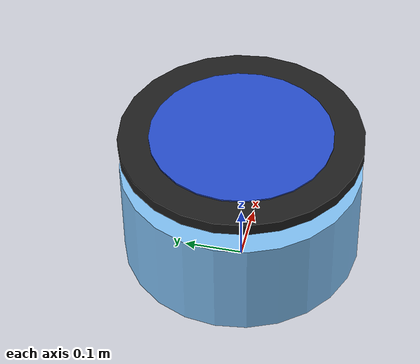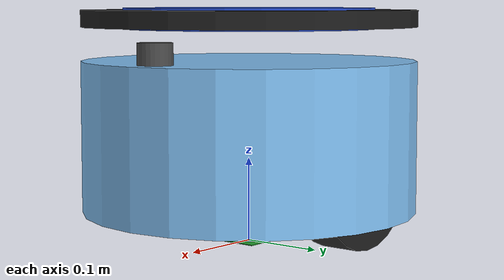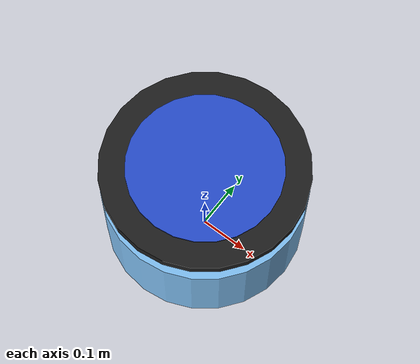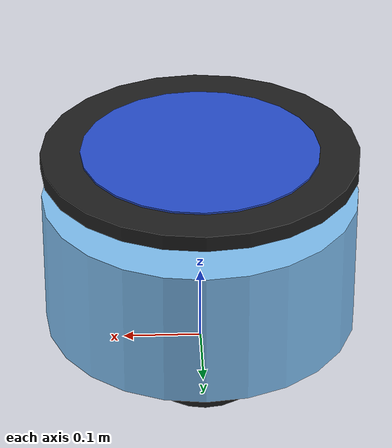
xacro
<?xml version="1.0"?>

<robot name="box_robot" xmlns:xacro="http://ros.org/wiki/xacro">

   <!-- Define a number of dimensions using properties -->
   <xacro:property name="torso_offset_x" value="0.0" />
   <xacro:property name="torso_offset_y" value="0.0" />
   <xacro:property name="torso_offset_z" value="0.23" /> <!--base_height/2+torso_height/2 -->

   <!-- Define a number of dimensions of sick sensor using properties -->
   <xacro:property name="sick_radius" value="0.02" />
   <xacro:property name="sick_length" value="0.05" />
   <xacro:property name="sick_offset_x" value="0.16" />
   <xacro:property name="sick_offset_y" value="0.0" />
   <xacro:property name="sick_offset_z" value="0.0" />

   <!-- Include all component files -->
   <xacro:include filename="$(find gpsbot_description)/urdf/gpsbotbase/materials.urdf.xacro" />
   <xacro:include filename="$(find gpsbot_description)/urdf/gpsbotbase/base.urdf.xacro" />
   <!-- Add the base and wheels -->
   <base name="base" color="DeepSkyBlue"/>

   <!-- Attach the torso -->

<!--This is for sensor-->
  <link name="front_flag">
      <visual>
        <origin xyz="0 0 0" rpy="0 0 0" />
        <geometry>
	  <cylinder radius="${sick_radius}" length="${sick_length}" />
        </geometry>
        <material name="DarkGrey" />
      </visual>
  </link>

  <joint name="front_point_flag" type="fixed">
    <origin xyz="${sick_offset_x} ${sick_offset_y} ${base_length/2}" rpy="0 0 0" />
    <parent link="base_link"/>
    <child link="front_flag" />
  </joint>

  <link name="up_flag">
      <visual>
        <origin xyz="0 0 0" rpy="0 0 0" />
        <geometry>
	  <cylinder radius="${base_radius}" length="0.02" />
        </geometry>
        <material name="Black" />
      </visual>
  </link>

  <joint name="up_point_flag" type="fixed">
    <origin xyz="0 0 ${sick_length+base_length/2}" rpy="0 0 0" />
    <parent link="base_link"/>
    <child link="up_flag" />
  </joint>

  <link name="outside_flag">
      <visual>
        <origin xyz="0 0 0" rpy="0 0 0" />
        <geometry>
	  <cylinder radius="${base_radius-0.05}" length="0.025" />
        </geometry>
        <material name="DogerBlue" />
      </visual>
  </link>

  <joint name="outside_point_flag" type="fixed">
    <origin xyz="0 0 ${sick_length+base_length/2}" rpy="0 0 0" />
    <parent link="base_link"/>
    <child link="outside_flag" />
  </joint>

</robot>

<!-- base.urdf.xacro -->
<robot name="base" xmlns:xacro="http://ros.org/wiki/xacro">

  <!-- Define a number of dimensions using properties -->
  <xacro:property name="base_x" value="0.40" />
  <xacro:property name="base_y" value="0.52" />
  <xacro:property name="base_length" value="0.18" />
  <xacro:property name="base_radius" value="0.20" />
  <xacro:property name="wheel_length" value="0.046" />
  <xacro:property name="wheel_radius" value="0.0801" />
  <xacro:property name="wheel_offset_x" value="0.0" />
  <xacro:property name="wheel_offset_y" value="0.15" />
  <xacro:property name="wheel_offset_z" value="-0.038" />

  <xacro:property name="PI" value="3.1415926" />

  <!-- define a wheel -->
  <xacro:macro name="wheel" params="suffix parent reflect color">
    <joint name="${parent}_${suffix}_wheel_joint" type="continuous">
      <axis xyz="0 0 1" />
      <limit effort="100" velocity="100"/>
      <safety_controller k_velocity="10" />
      <origin xyz="${wheel_offset_x} ${reflect*wheel_offset_y} ${wheel_offset_z}" rpy="${reflect*PI/2} 0 0" />
      <parent link="${parent}_link"/>
      <child link="${parent}_${suffix}_wheel_link"/>
    </joint>
    <link name="${parent}_${suffix}_wheel_link">
      <visual>
        <origin xyz="0 0 0" rpy="0 0 0" />
        <geometry>
          <cylinder radius="${wheel_radius}" length="${wheel_length}"/>
        </geometry>
        <material name="${color}" />
      </visual>
    </link>
  </xacro:macro>

  <!-- The base xacro macro -->
  <xacro:macro name="base" params="name color">
    <link name="${name}_link">

        <visual>
            <origin xyz="0 0 0" rpy="0 0 0"/>
            <geometry>
                <cylinder radius="${base_radius}" length="${base_length}" />
            </geometry>
            <material name="DeepSkyBlue"/>
        </visual>
        <collision>
            <origin xyz="0 0 0" rpy="0 0 0"/>
            <geometry>
                 <box size="${base_x} ${base_y} ${base_length}"/>
            </geometry>
        </collision>
    </link>
  </xacro:macro>

  <link name="base_footprint">
      <visual>
        <origin xyz="0 0 0" rpy="0 0 0" />
        <geometry>

          <box size="0.05 0.05 0.001" />
        </geometry>
        <material name="TransparentGreen" />
      </visual>
  </link>

  <joint name="base_joint" type="fixed">
    <origin xyz="0 0 ${base_length/2 - wheel_offset_z}" rpy="0 0 0" />
    <parent link="base_footprint"/>
    <child link="base_link" />
  </joint>

   <!-- Add the drive wheels -->
   <wheel parent="base" suffix="l" reflect="1" color="Black"/>
   <wheel parent="base" suffix="r" reflect="-1" color="Black"/>

</robot>
